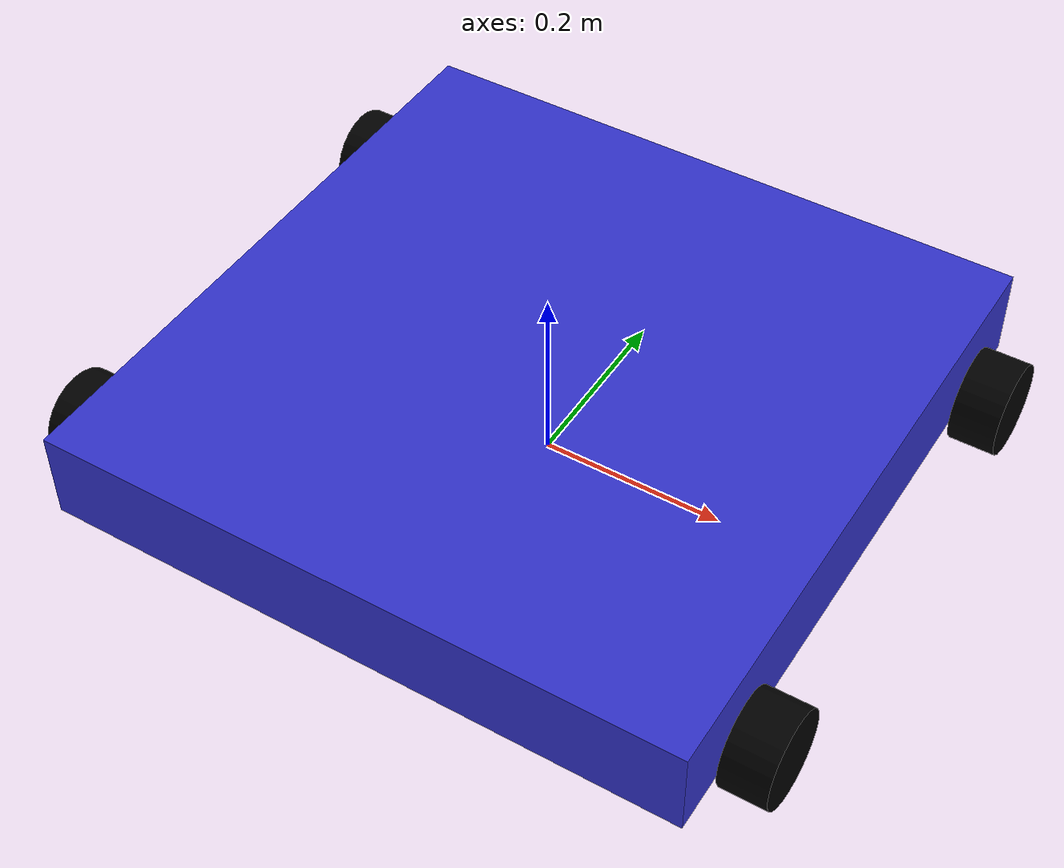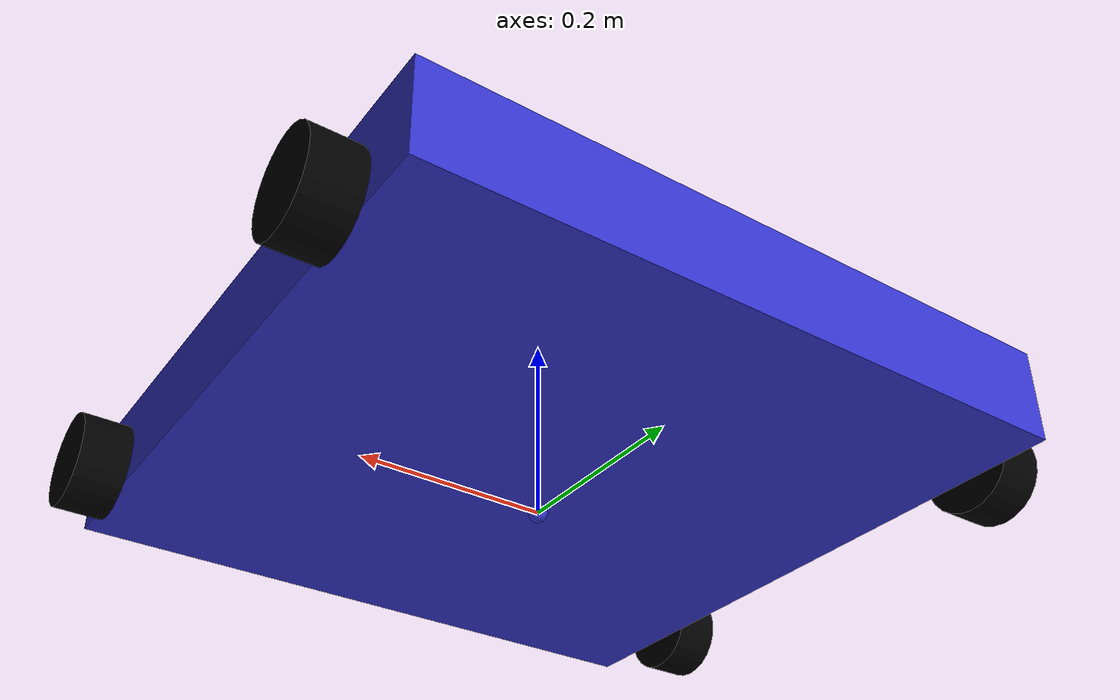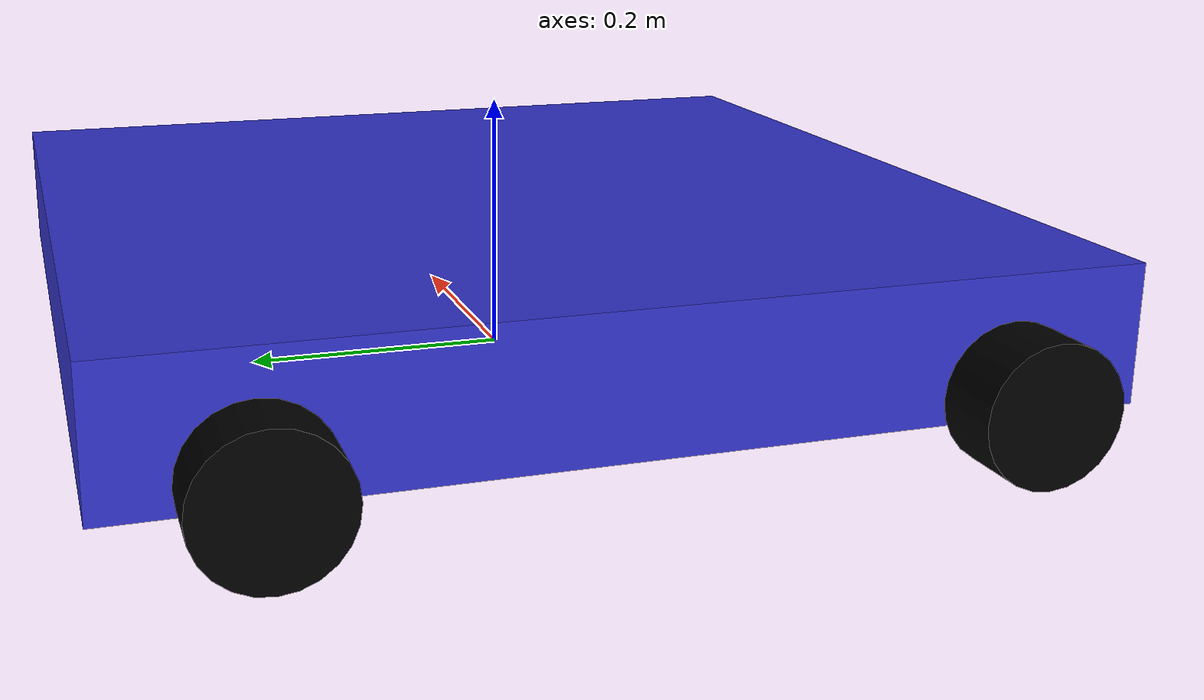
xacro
<?xml version="1.0"?>

<robot xmlns:xacro="http://www.ros.org/wiki/xacro" name="diff_car">

  <!-- 参数定义 -->
  <xacro:property name="body_length" value="0.70"/>
  <xacro:property name="body_width"  value="0.70"/>
  <xacro:property name="body_height" value="0.10"/>
  <xacro:property name="body_mass"   value="10"/>

  <xacro:property name="wheel_radius" value="0.05"/> <!-- 10 cm -->
  <xacro:property name="wheel_width"  value="0.05"/>
  <xacro:property name="wheel_mass"   value="1"/>
  <xacro:property name="ground_clearance" value="0.03"/>

  <!-- 惯性宏: box -->
  <xacro:macro name="box_inertia" params="mass x y z">
    <!-- 立方体惯性矩 -->
    <inertial>
      <mass value="${mass}"/>
      <origin xyz="0 0 0" rpy="0 0 0"/>
      <inertia ixx="${1/12.0*mass*(y*y+z*z)}"
               iyy="${1/12.0*mass*(x*x+z*z)}"
               izz="${1/12.0*mass*(x*x+y*y)}"
               ixy="0" ixz="0" iyz="0"/>
    </inertial>
  </xacro:macro>

  <!-- 惯性宏: cylinder -->
  <xacro:macro name="cylinder_inertia" params="mass r l">
    <!-- 圆柱体惯性矩 -->
    <inertial>
      <mass value="${mass}"/>
      <origin xyz="0 0 0" rpy="0 0 0"/>
      <inertia ixx="${1/12.0*mass*(3*r*r + l*l)}"
               iyy="${1/12.0*mass*(3*r*r + l*l)}"
               izz="${0.5*mass*r*r}"
               ixy="0" ixz="0" iyz="0"/>
    </inertial>
  </xacro:macro>

  <link name="base_foot_link">
    <visual>
      <geometry>
        <sphere radius="0.01" />
      </geometry>
      <material name="blue">
        <color rgba="0.2 0.2 0.8 1"/>
      </material>
    </visual>
    <collision>
      <geometry>
        <sphere radius="0.01" />
      </geometry>
    </collision>
  </link>

  <!-- ================== 车体 ================== -->
  <link name="base_link">
    <visual>
      <geometry>
        <box size="${body_length} ${body_width} ${body_height}"/>
      </geometry>
      <material name="blue">
        <color rgba="0.2 0.2 0.8 1"/>
      </material>
    </visual>
    <collision>
      <geometry>
        <box size="${body_length} ${body_width} ${body_height}"/>
      </geometry>
    </collision>
    <xacro:box_inertia mass="${body_mass}"
                       x="${body_length}" y="${body_width}" z="${body_height}"/>
  </link>

    <joint name="base_link_to_base_foot_link" type="fixed">
      <parent link="base_foot_link"/>
      <child link="base_link"/>
      <origin xyz="0 0 ${body_height/2 + ground_clearance}" rpy="0 0 0"/>
    </joint>

  <!-- ================== 四个轮子 ================== -->
  <xacro:macro name="wheel" params="name x y z">
    <link name="${name}">
      <visual>
        <geometry>
          <cylinder radius="${wheel_radius}" length="${wheel_width}"/>
        </geometry>
        <!-- 将圆柱转90°，x轴为轴向 -->
        <origin xyz="0 0 0" rpy="0 1.5708 0"/>
        <material name="black">
          <color rgba="0 0 0 1"/>
        </material>
      </visual>
      <collision>
        <geometry>
          <cylinder radius="${wheel_radius}" length="${wheel_width}"/>
        </geometry>
        <origin xyz="0 0 0" rpy="0 1.5708 0"/>
      </collision>
      <xacro:cylinder_inertia mass="${wheel_mass}" r="${wheel_radius}" l="${wheel_width}"/>
    </link>

    <joint name="joint_${name}" type="continuous">
      <parent link="base_link"/>
      <child link="${name}"/>
      <origin xyz="${x} ${y} ${z}" rpy="0 0 0"/>
      <axis xyz="1 0 0"/>
    </joint>
  </xacro:macro>

  <!-- 车体中心到轮子中心的偏移 -->
  <xacro:property name="wheel_offset_x" value="0.38"/>
  <xacro:property name="wheel_offset_y" value="0.25"/>
  <xacro:property name="wheel_center_z"
                  value="${-body_height/2 - ground_clearance + wheel_radius }"/>

  <!-- 实例化四个轮子 -->
  <xacro:wheel name="wheel_fl" x="${ wheel_offset_x}" y="${ wheel_offset_y}" z="${wheel_center_z}"/>
  <xacro:wheel name="wheel_fr" x="${ wheel_offset_x}" y="${-wheel_offset_y}" z="${wheel_center_z}"/>
  <xacro:wheel name="wheel_rl" x="${-wheel_offset_x}" y="${ wheel_offset_y}" z="${wheel_center_z}"/>
  <xacro:wheel name="wheel_rr" x="${-wheel_offset_x}" y="${-wheel_offset_y}" z="${wheel_center_z}"/>

</robot>
